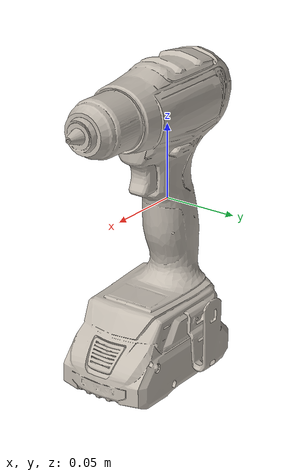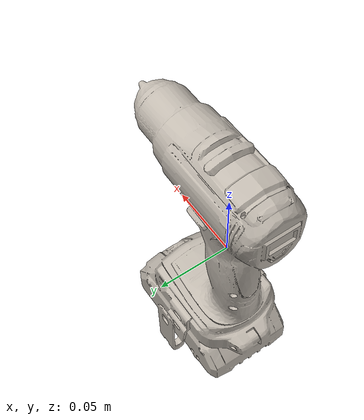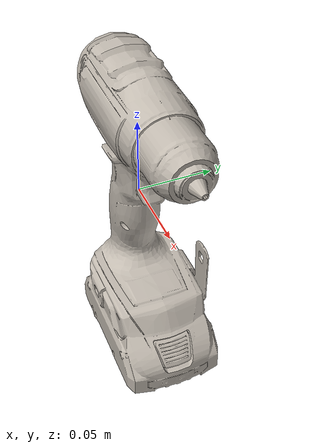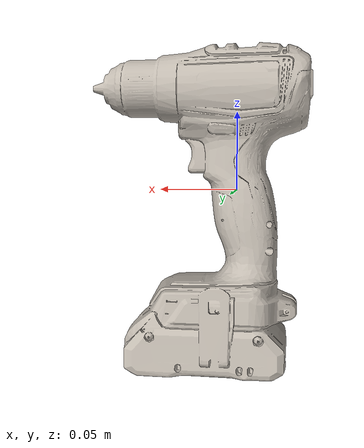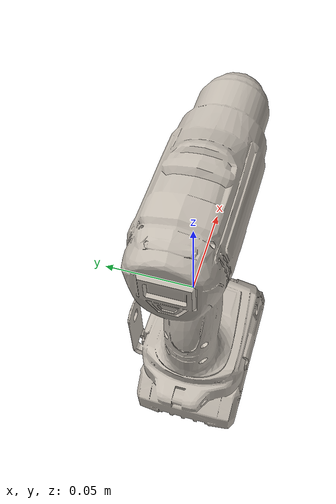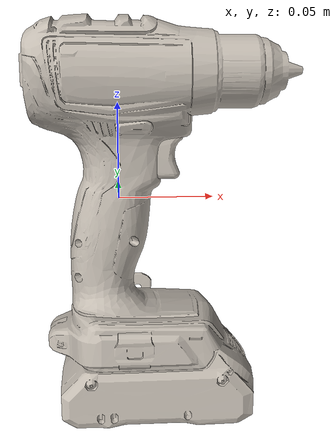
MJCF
<mujoco model="material">
  <compiler angle="radian" />
  <asset>
    <texture name="material_base_color" type="2d" file="/mnt/d/work/mujoco-study/bodex_mjx/assets/drill/meshes/texture_pbr_20250901.png" />
    <material name="material_mat" texture="material_base_color" texuniform="true" />
    <mesh name="material_visual" file="/mnt/d/work/mujoco-study/bodex_mjx/assets/drill/meshes/material_visual.obj" />
    <mesh name="material_collision" file="/mnt/d/work/mujoco-study/bodex_mjx/assets/drill/meshes/material_collision.stl" />
  </asset>
  <worldbody>
    <body name="grasp_object" pos="0 0 0">
      <freejoint name="grasp_object_freejoint" /><inertial pos="0.012024 -0.023863 0.001308" mass="0.643915" fullinertia="3.457934e-03 6.641876e-04 3.839510e-03 1.459862e-04 -1.764735e-06 1.481813e-06" />
      <geom name="visual" type="mesh" mesh="material_visual" contype="0" conaffinity="0" group="2" material="material_mat" />
      <geom name="grasp_object_geom" type="mesh" mesh="material_collision" contype="1" conaffinity="1" group="3" />
    <site name="grasp_anchor" pos="0.0 0.0 0.0" size="0.004" rgba="1 0.2 0.2 1" /></body>
  </worldbody>
</mujoco>
